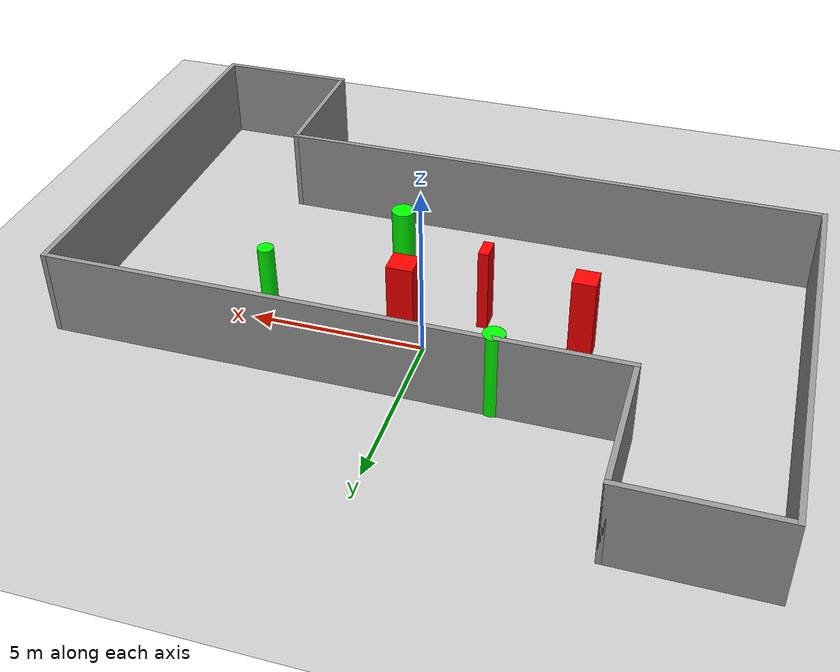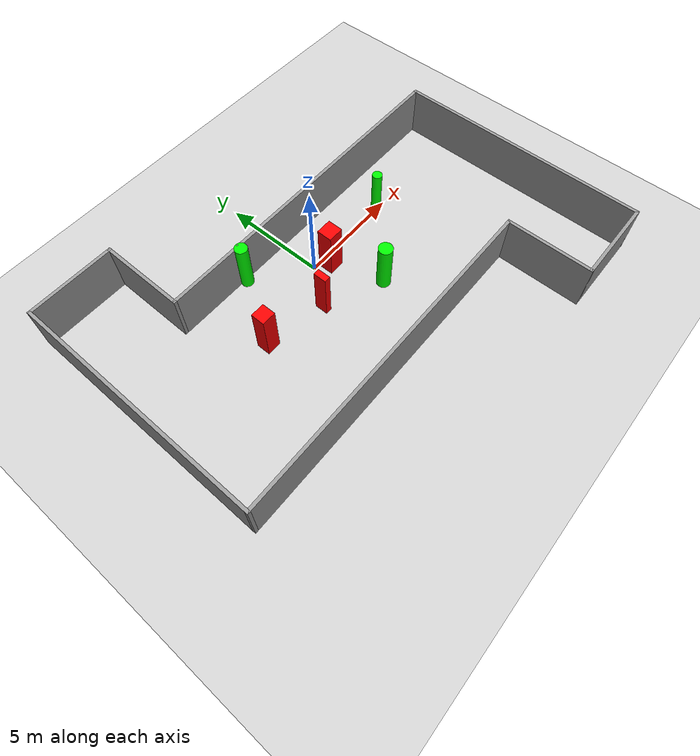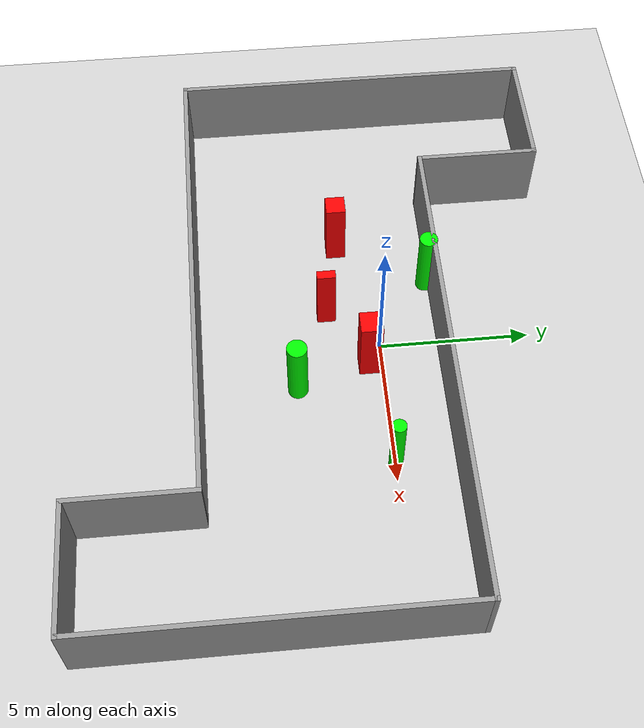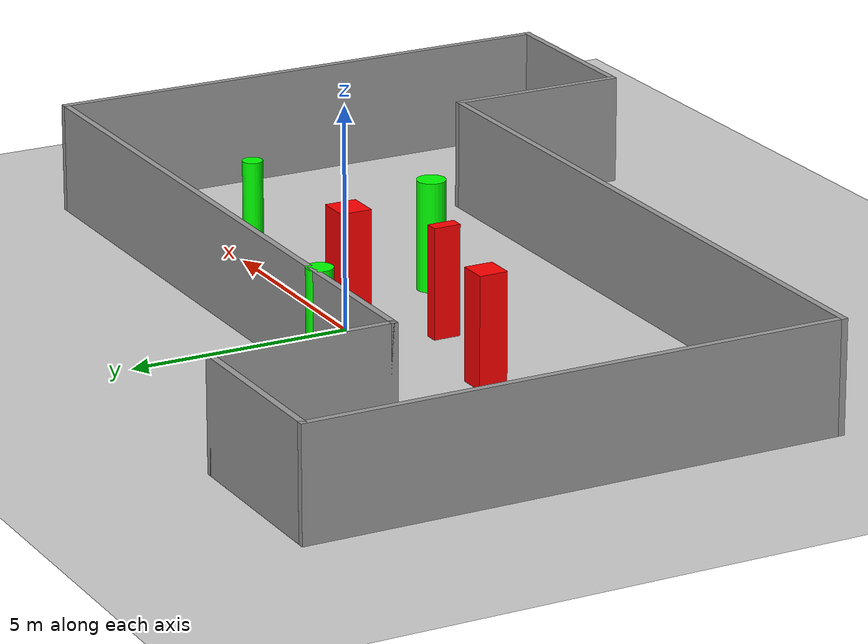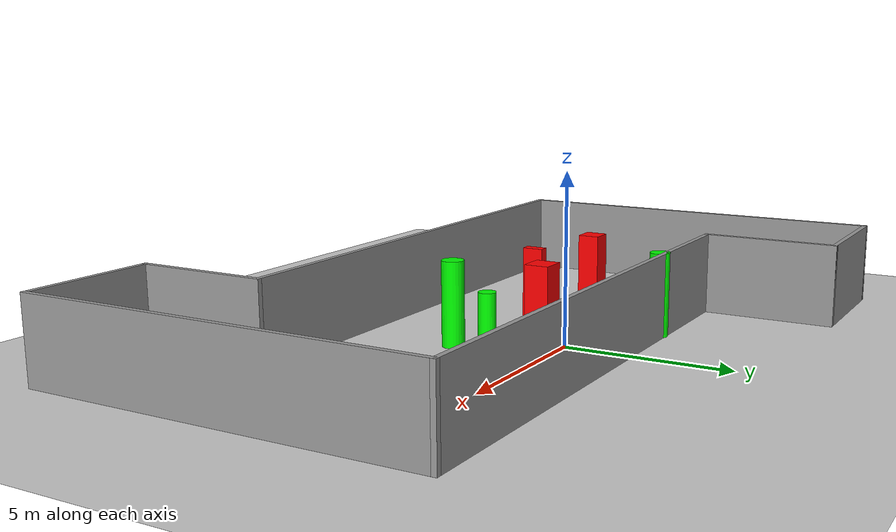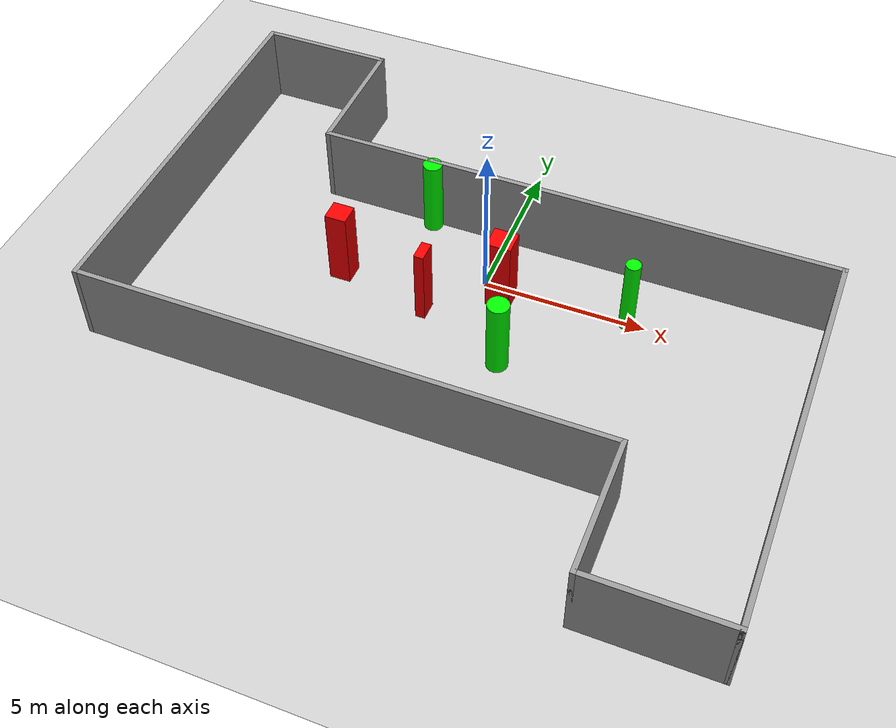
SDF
<sdf version="1.7">
 <world name="default">
  <light name="sun" type="directional">
   <pose>0 0 10 0 -0 0</pose>
   <diffuse>0.8 0.8 0.8 1</diffuse>
   <specular>0.2 0.2 0.2 1</specular>
   <attenuation>
    <range>1000</range>
    <constant>0.9</constant>
    <linear>0.01</linear>
    <quadratic>0.001</quadratic>
   </attenuation>
   <direction>-0.5 0.1 -0.9</direction>
   <spot><inner_angle>0</inner_angle><outer_angle>0</outer_angle><falloff>0</falloff></spot>
  </light>
  <model name="ground_plane">
   <static>1</static>
   <link name="link">
    <collision name="collision">
     <geometry><plane><normal>0 0 1</normal><size>100 100</size></plane></geometry>
     <surface>
      <contact><collide_bitmask>65535</collide_bitmask></contact>
      <friction><ode><mu>100</mu><mu2>50</mu2></ode></friction>
     </surface>
    </collision>
    <visual name="visual">
     <cast_shadows>0</cast_shadows>
     <geometry><plane><normal>0 0 1</normal><size>100 100</size></plane></geometry>
     <material>
      <script><uri>file://media/materials/scripts/gazebo.material</uri><name>Gazebo/Grey</name></script>
     </material>
    </visual>
   </link>
  </model>
  <gravity>0 0 -9.8</gravity>
  <magnetic_field>6e-06 2.3e-05 -4.2e-05</magnetic_field>
  <atmosphere type="adiabatic"/>
  <physics type="ode">
   <max_step_size>0.001</max_step_size>
   <real_time_factor>1</real_time_factor>
   <real_time_update_rate>1000</real_time_update_rate>
  </physics>
  <scene><ambient>0.4 0.4 0.4 1</ambient><background>0.7 0.7 0.7 1</background><shadows>1</shadows></scene>
  <spherical_coordinates>
   <surface_model>EARTH_WGS84</surface_model>
   <latitude_deg>0</latitude_deg>
   <longitude_deg>0</longitude_deg>
   <elevation>0</elevation>
   <heading_deg>0</heading_deg>
  </spherical_coordinates>
  <model name="my_base_walls">
   <link name="Wall_13">
    <collision name="Wall_13_Collision">
     <geometry><box><size>12.15 0.15 2.5</size></box></geometry>
     <pose>0 0 1.25 0 -0 0</pose>
    </collision>
    <visual name="Wall_13_Visual">
     <pose>0 0 1.25 0 -0 0</pose>
     <geometry><box><size>12.15 0.15 2.5</size></box></geometry>
     <material>
      <script><uri>file://media/materials/scripts/gazebo.material</uri><name>Gazebo/Grey</name></script>
      <ambient>1 1 1 1</ambient>
     </material>
     <meta><layer>0</layer></meta>
    </visual>
    <pose>10 -2 0 0 -0 1.5708</pose>
   </link>
   <link name="Wall_15">
    <collision name="Wall_15_Collision">
     <geometry><box><size>16.15 0.15 2.5</size></box></geometry>
     <pose>0 0 1.25 0 -0 0</pose>
    </collision>
    <visual name="Wall_15_Visual">
     <pose>0 0 1.25 0 -0 0</pose>
     <geometry><box><size>16.15 0.15 2.5</size></box></geometry>
     <material>
      <script><uri>file://media/materials/scripts/gazebo.material</uri><name>Gazebo/Grey</name></script>
      <ambient>1 1 1 1</ambient>
     </material>
     <meta><layer>0</layer></meta>
    </visual>
    <pose>2 4 0 0 -0 3.14159</pose>
   </link>
   <link name="Wall_17">
    <collision name="Wall_17_Collision">
     <geometry><box><size>4.15 0.15 2.5</size></box></geometry>
     <pose>0 0 1.25 0 -0 0</pose>
    </collision>
    <visual name="Wall_17_Visual">
     <pose>0 0 1.25 0 -0 0</pose>
     <geometry><box><size>4.15 0.15 2.5</size></box></geometry>
     <material>
      <script><uri>file://media/materials/scripts/gazebo.material</uri><name>Gazebo/Grey</name></script>
      <ambient>1 1 1 1</ambient>
     </material>
     <meta><layer>0</layer></meta>
    </visual>
    <pose>6 -6 0 0 -0 -1.5708</pose>
   </link>
   <link name="Wall_19">
    <collision name="Wall_19_Collision">
     <geometry><box><size>12.15 0.15 2.5</size></box></geometry>
     <pose>0 0 1.25 0 -0 0</pose>
    </collision>
    <visual name="Wall_19_Visual">
     <pose>0 0 1.25 0 -0 0</pose>
     <geometry><box><size>12.15 0.15 2.5</size></box></geometry>
     <material>
      <script><uri>file://media/materials/scripts/gazebo.material</uri><name>Gazebo/Grey</name></script>
      <ambient>1 1 1 1</ambient>
     </material>
     <meta><layer>0</layer></meta>
    </visual>
    <pose>-10 2 0 0 -0 1.5708</pose>
   </link>
   <link name="Wall_21">
    <collision name="Wall_21_Collision">
     <geometry><box><size>4.15 0.15 2.5</size></box></geometry>
     <pose>0 0 1.25 0 -0 0</pose>
    </collision>
    <visual name="Wall_21_Visual">
     <pose>0 0 1.25 0 -0 0</pose>
     <geometry><box><size>4.15 0.15 2.5</size></box></geometry>
     <material>
      <script><uri>file://media/materials/scripts/gazebo.material</uri><name>Gazebo/Grey</name></script>
      <ambient>1 1 1 1</ambient>
     </material>
     <meta><layer>0</layer></meta>
    </visual>
    <pose>-8 8 0 0 -0 0</pose>
   </link>
   <link name="Wall_23">
    <collision name="Wall_23_Collision">
     <geometry><box><size>4.15 0.15 2.5</size></box></geometry>
     <pose>0 0 1.25 0 -0 0</pose>
    </collision>
    <visual name="Wall_23_Visual">
     <pose>0 0 1.25 0 -0 0</pose>
     <geometry><box><size>4.15 0.15 2.5</size></box></geometry>
     <material>
      <script><uri>file://media/materials/scripts/gazebo.material</uri><name>Gazebo/Grey</name></script>
      <ambient>1 1 1 1</ambient>
     </material>
     <meta><layer>0</layer></meta>
    </visual>
    <pose>-6 6 0 0 -0 -1.5708</pose>
   </link>
   <link name="Wall_25">
    <collision name="Wall_25_Collision">
     <geometry><box><size>4.15 0.15 2.5</size></box></geometry>
     <pose>0 0 1.25 0 -0 0</pose>
    </collision>
    <visual name="Wall_25_Visual">
     <pose>0 0 1.25 0 -0 0</pose>
     <geometry><box><size>4.15 0.15 2.5</size></box></geometry>
     <material>
      <script><uri>file://media/materials/scripts/gazebo.material</uri><name>Gazebo/Grey</name></script>
      <ambient>1 1 1 1</ambient>
     </material>
     <meta><layer>0</layer></meta>
    </visual>
    <pose>8 -8 0 0 -0 0</pose>
   </link>
   <link name="Wall_9">
    <collision name="Wall_9_Collision">
     <geometry><box><size>16.15 0.15 2.5</size></box></geometry>
     <pose>0 0 1.25 0 -0 0</pose>
    </collision>
    <visual name="Wall_9_Visual">
     <pose>0 0 1.25 0 -0 0</pose>
     <geometry><box><size>16.15 0.15 2.5</size></box></geometry>
     <material>
      <script><uri>file://media/materials/scripts/gazebo.material</uri><name>Gazebo/Grey</name></script>
      <ambient>1 1 1 1</ambient>
     </material>
     <meta><layer>0</layer></meta>
    </visual>
    <pose>-2 -4 0 0 -0 3.14159</pose>
   </link>
   <static>1</static>
   <pose>-0 -2 0 0 -0 0</pose>
  </model>
  <model name="cylinder1">
   <static>1</static>
   <link name="link">
    <inertial>
     <mass>1</mass>
     <inertia><ixx>0.5</ixx><ixy>0</ixy><ixz>0</ixz><iyy>0.5</iyy><iyz>0</iyz><izz>1</izz></inertia>
    </inertial>
    <collision name="collision">
     <geometry><cylinder><radius>0.29806305617676054</radius><length>2.5</length></cylinder></geometry>
    </collision>
    <visual name="visual">
     <geometry><cylinder><radius>0.29806305617676054</radius><length>2.5</length></cylinder></geometry>
     <material>
      <ambient>0 1 0 1</ambient>
      <diffuse>0 1 0 1</diffuse>
      <specular>0.1 0.1 0.1 1</specular>
      <emissive>0 0 0 0</emissive>
     </material>
    </visual>
   </link>
   <pose>-2.4353962710134174 1.82968253364184 1.25 0 0 0</pose>
  </model>
  <model name="cylinder2">
   <static>1</static>
   <link name="link">
    <inertial>
     <mass>1</mass>
     <inertia><ixx>0.5</ixx><ixy>0</ixy><ixz>0</ixz><iyy>0.5</iyy><iyz>0</iyz><izz>1</izz></inertia>
    </inertial>
    <collision name="collision">
     <geometry><cylinder><radius>0.2295279819055152</radius><length>2.5</length></cylinder></geometry>
    </collision>
    <visual name="visual">
     <geometry><cylinder><radius>0.2295279819055152</radius><length>2.5</length></cylinder></geometry>
     <material>
      <ambient>0 1 0 1</ambient>
      <diffuse>0 1 0 1</diffuse>
      <specular>0.1 0.1 0.1 1</specular>
      <emissive>0 0 0 0</emissive>
     </material>
    </visual>
   </link>
   <pose>4.441944026751923 0.00503826113761896 1.25 0 0 0</pose>
  </model>
  <model name="cylinder3">
   <static>1</static>
   <link name="link">
    <inertial>
     <mass>1</mass>
     <inertia><ixx>0.5</ixx><ixy>0</ixy><ixz>0</ixz><iyy>0.5</iyy><iyz>0</iyz><izz>1</izz></inertia>
    </inertial>
    <collision name="collision">
     <geometry><cylinder><radius>0.3289425673856867</radius><length>2.5</length></cylinder></geometry>
    </collision>
    <visual name="visual">
     <geometry><cylinder><radius>0.3289425673856867</radius><length>2.5</length></cylinder></geometry>
     <material>
      <ambient>0 1 0 1</ambient>
      <diffuse>0 1 0 1</diffuse>
      <specular>0.1 0.1 0.1 1</specular>
      <emissive>0 0 0 0</emissive>
     </material>
    </visual>
   </link>
   <pose>1.450374646869168 -2.8348032942061927 1.25 0 0 0</pose>
  </model>
  <model name="box1">
   <static>1</static>
   <link name="link">
    <inertial>
     <mass>1</mass>
     <inertia><ixx>0.083</ixx><ixy>0</ixy><ixz>0</ixz><iyy>0.083</iyy><iyz>0</iyz><izz>0.083</izz></inertia>
    </inertial>
    <collision name="collision">
     <geometry><box><size>0.7456150045728964 0.7203937877614213 2.5</size></box></geometry>
    </collision>
    <visual name="visual">
     <geometry><box><size>0.7456150045728964 0.7203937877614213 2.5</size></box></geometry>
     <material>
      <ambient>1 0 0 1</ambient>
      <diffuse>1 0 0 1</diffuse>
      <specular>0.1 0.1 0.1 1</specular>
      <emissive>0 0 0 0</emissive>
     </material>
    </visual>
    <sensor name="my_contact" type="contact">
     <contact><collision>box_collision</collision><topic>__default_topic__</topic></contact>
    </sensor>
   </link>
   <pose>0.6634544604510495 -0.4155009760007058 1.25 0 0 0</pose>
  </model>
  <model name="box2">
   <static>1</static>
   <link name="link">
    <inertial>
     <mass>1</mass>
     <inertia><ixx>0.083</ixx><ixy>0</ixy><ixz>0</ixz><iyy>0.083</iyy><iyz>0</iyz><izz>0.083</izz></inertia>
    </inertial>
    <collision name="collision">
     <geometry><box><size>0.6576492582789816 0.6477894755360957 2.5</size></box></geometry>
    </collision>
    <visual name="visual">
     <geometry><box><size>0.6576492582789816 0.6477894755360957 2.5</size></box></geometry>
     <material>
      <ambient>1 0 0 1</ambient>
      <diffuse>1 0 0 1</diffuse>
      <specular>0.1 0.1 0.1 1</specular>
      <emissive>0 0 0 0</emissive>
     </material>
    </visual>
    <sensor name="my_contact" type="contact">
     <contact><collision>box_collision</collision><topic>__default_topic__</topic></contact>
    </sensor>
   </link>
   <pose>-4.1561333991466825 -1.1146606116855917 1.25 0 0 0</pose>
  </model>
  <model name="box3">
   <static>1</static>
   <link name="link">
    <inertial>
     <mass>1</mass>
     <inertia><ixx>0.083</ixx><ixy>0</ixy><ixz>0</ixz><iyy>0.083</iyy><iyz>0</iyz><izz>0.083</izz></inertia>
    </inertial>
    <collision name="collision">
     <geometry><box><size>0.2996933513280262 0.6158182557257385 2.5</size></box></geometry>
    </collision>
    <visual name="visual">
     <geometry><box><size>0.2996933513280262 0.6158182557257385 2.5</size></box></geometry>
     <material>
      <ambient>1 0 0 1</ambient>
      <diffuse>1 0 0 1</diffuse>
      <specular>0.1 0.1 0.1 1</specular>
      <emissive>0 0 0 0</emissive>
     </material>
    </visual>
    <sensor name="my_contact" type="contact">
     <contact><collision>box_collision</collision><topic>__default_topic__</topic></contact>
    </sensor>
   </link>
   <pose>-1.2944187011156778 -1.6754627660945651 1.25 0 0 0</pose>
  </model>
 </world>
</sdf>
